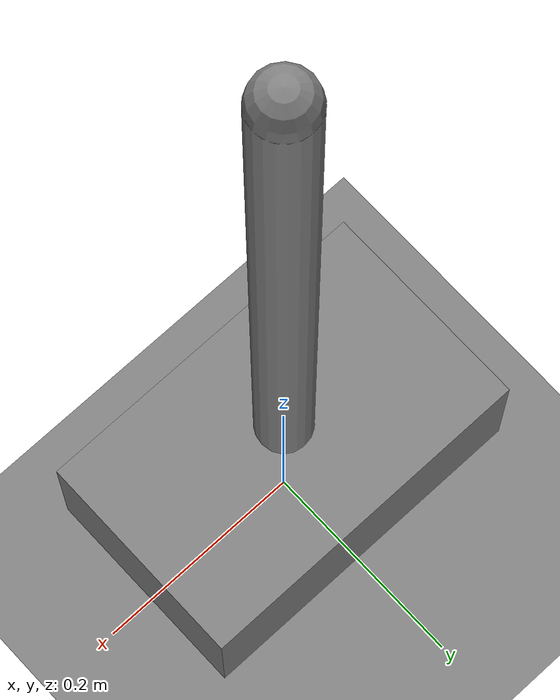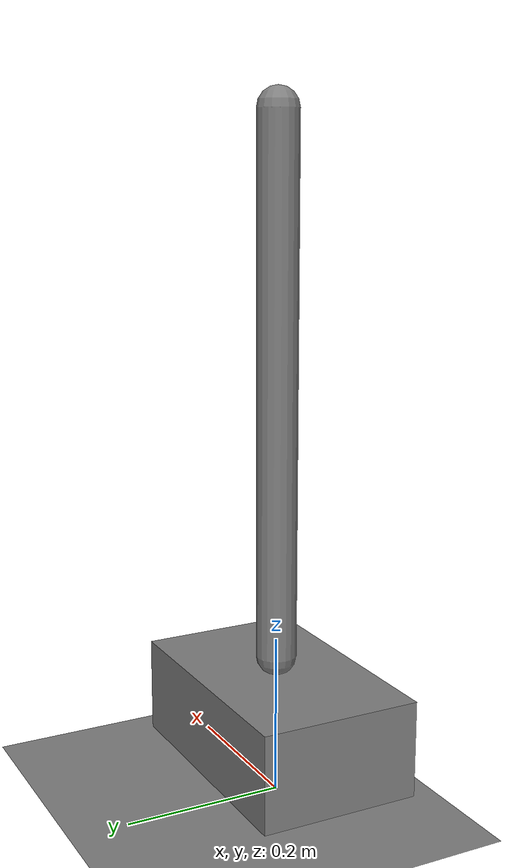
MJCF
<mujoco model="cartpole_recovery">
  <option timestep="0.01" gravity="0 0 -9.81"/>
  <worldbody>
    <geom name="floor" type="plane" size="3 1 0.05"/>
    <body name="cart" pos="0 0 0.1">
      <joint name="slider" type="slide" axis="1 0 0" damping="0.08"/>
      <geom name="cart_geom" type="box" size="0.16 0.10 0.06" mass="1.0"/>
      <body name="pole" pos="0 0 0.08">
        <joint name="hinge" type="hinge" axis="0 1 0" damping="0.02"/>
        <geom name="pole_geom" type="capsule" fromto="0 0 0 0 0 0.65" size="0.025" mass="0.35"/>
      </body>
    </body>
  </worldbody>
  <actuator>
    <motor name="cart_motor" joint="slider" gear="1.0"/>
  </actuator>
</mujoco>
